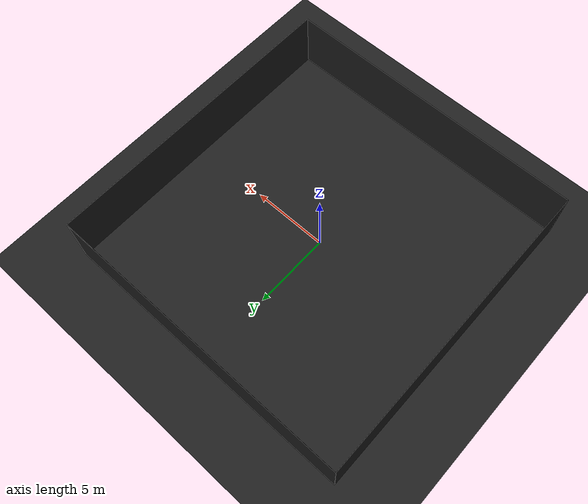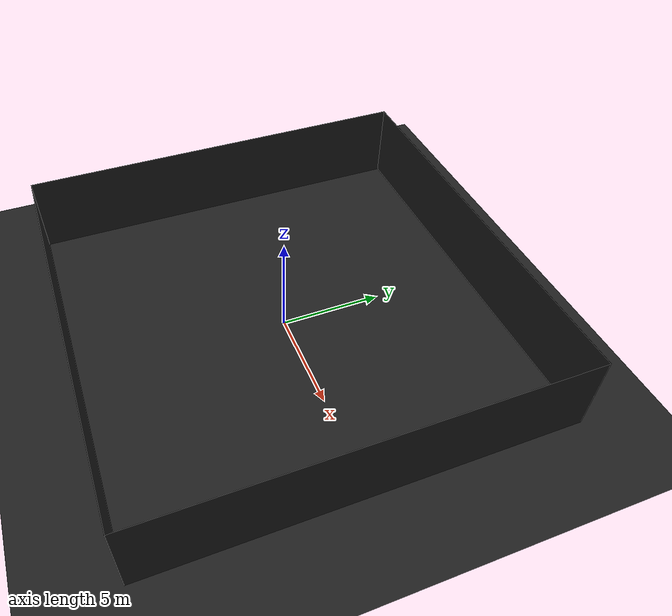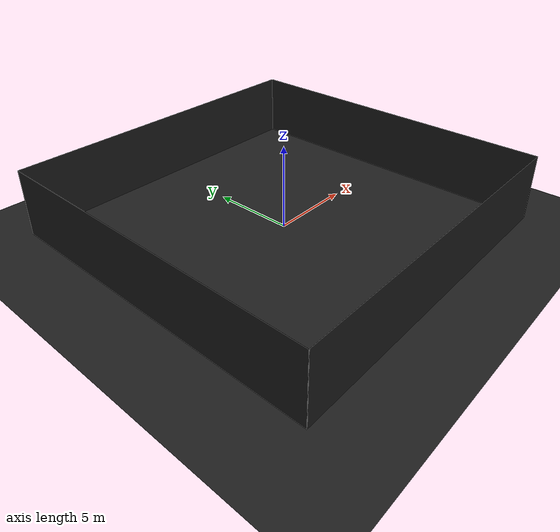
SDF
<?xml version="1.0"?>
<sdf version='1.4'>
  <world name='black_room'>
    <include>
      <uri>model://sun</uri>
    </include>
  <model name="ground_plane">
    <static>true</static>
    <link name="link">
      <collision name="collision">
        <geometry>
          <plane>
            <normal>0 0 1</normal>
            <size>20 20</size>
          </plane>
        </geometry>
        <surface>
          <contact>
             <collide_bitmask>0xffff</collide_bitmask>
          </contact>
          <friction>
            <ode>
              <mu>100</mu>
              <mu2>50</mu2>
            </ode>
          </friction>
        </surface>
      </collision>
      <visual name="visual">
        <cast_shadows>false</cast_shadows>
        <geometry>
          <plane>
            <normal>0 0 1</normal>
            <size>20 20</size>
          </plane>
        </geometry>
        <material>
          <script>
            <uri>file://media/materials/scripts/gazebo.material</uri>
            <name>Gazebo/Black</name>
          </script>
        </material>
      </visual>
    </link>
  </model>

    <model name='wall1'>
      <static>1</static>
      <link name='link_wall1'>
        <visual name='wall1_visual'>
          <cast_shadows>0</cast_shadows>
          <pose> 9.99 0 2 0 1.5708 0 </pose>
          <geometry>
            <box> <size> 4 20 0.01 </size> </box>
          </geometry>
          <material>
            <script>
              <name>Gazebo/Black</name>
            </script>
          </material>
        </visual>
        <self_collide>0</self_collide>
        <kinematic>0</kinematic>
        <gravity>1</gravity>
      </link>
    </model>

    <model name='wall2'>
      <static>1</static>
      <link name='link_wall2'>
        <visual name='wall2_visual'>
          <cast_shadows>0</cast_shadows>
          <pose> -9.99 0 2 0 1.5708 0 </pose>
          <geometry>
            <box> <size> 4 20 0.01 </size> </box>
          </geometry>
          <material>
            <script>
              <name>Gazebo/Black</name>
            </script>
          </material>
        </visual>
        <self_collide>0</self_collide>
        <kinematic>0</kinematic>
        <gravity>1</gravity>
      </link>
    </model>

    <model name='wall3'>
      <static>1</static>
      <link name='link_wall3'>
        <visual name='wall3_visual'>
          <cast_shadows>0</cast_shadows>
          <pose> 0 9.99 2 0 1.5708 1.5708 </pose>
          <geometry>
            <box> <size> 4 20 0.01 </size> </box>
          </geometry>
          <material>
            <script>
              <name>Gazebo/Black</name>
            </script>
          </material>
        </visual>
        <self_collide>0</self_collide>
        <kinematic>0</kinematic>
        <gravity>1</gravity>
      </link>
    </model>

    <model name='wall4'>
      <static>1</static>
      <link name='link_wall4'>
        <visual name='wall4_visual'>
          <cast_shadows>0</cast_shadows>
          <pose> 0 -9.99 2 0 1.5708 1.5708 </pose>
          <geometry>
            <box> <size> 4 20 0.01 </size> </box>
          </geometry>
          <material>
            <script>
              <name>Gazebo/Black</name>
            </script>
          </material>
        </visual>
        <self_collide>0</self_collide>
        <kinematic>0</kinematic>
        <gravity>1</gravity>
      </link>
    </model>

    <scene>
      <grid>0</grid>
    </scene>
  </world>
</sdf>
